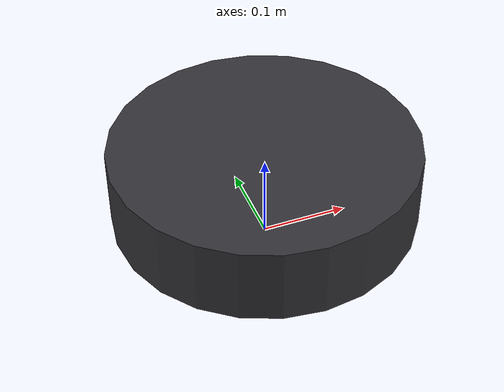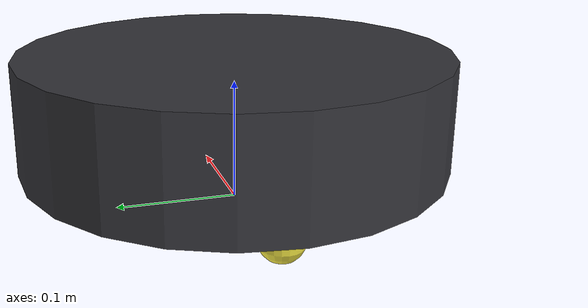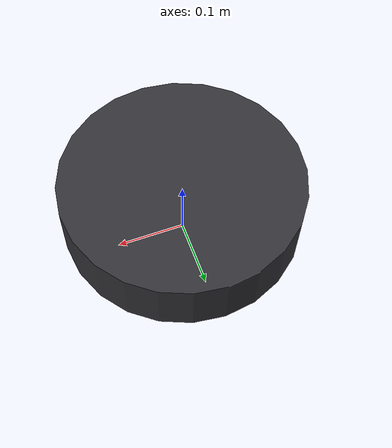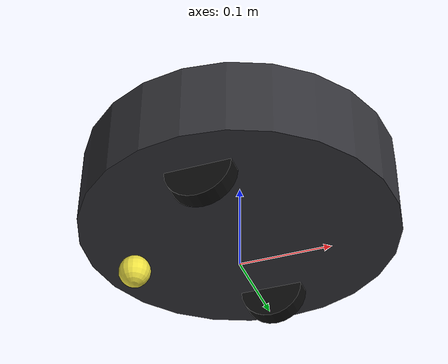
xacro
<?xml version="1.0"?>
<robot name="robot_sim" xmlns:xacro="http://ros.org/wiki/xacro">

  <xacro:arg name="use_camera" default="false"/>

  <xacro:property name="body_radius" value="0.175"/>  <!-- Ø0.35 Roomba -->
  <xacro:property name="body_height" value="0.09"/>
  <xacro:property name="wheel_radius" value="0.036"/>
  <xacro:property name="wheel_width"  value="0.02"/>
  <xacro:property name="wheel_sep"    value="0.235"/> <!-- Roomba track -->
  <xacro:property name="lidar_z"      value="0.16"/>

  <link name="base_link">
    <inertial>
      <mass value="3.0"/>
      <inertia ixx="0.03" ixy="0" ixz="0" iyy="0.03" iyz="0" izz="0.05"/>
    </inertial>
    <collision>
      <origin xyz="0 0 ${wheel_radius + body_height/2}"/>
      <geometry><cylinder radius="${body_radius}" length="${body_height}"/></geometry>
    </collision>
    <visual>
      <origin xyz="0 0 ${wheel_radius + body_height/2}"/>
      <geometry><cylinder radius="${body_radius}" length="${body_height}"/></geometry>
      <material name="grey"><color rgba="0.2 0.2 0.22 1"/></material>
    </visual>
  </link>

  <xacro:macro name="wheel" params="side reflect">
    <link name="${side}_wheel">
      <inertial>
        <mass value="0.2"/>
        <inertia ixx="0.0003" ixy="0" ixz="0" iyy="0.0003" iyz="0" izz="0.0005"/>
      </inertial>
      <collision>
        <origin rpy="1.5708 0 0"/>
        <geometry><cylinder radius="${wheel_radius}" length="${wheel_width}"/></geometry>
      </collision>
      <visual>
        <origin rpy="1.5708 0 0"/>
        <geometry><cylinder radius="${wheel_radius}" length="${wheel_width}"/></geometry>
        <material name="black"><color rgba="0.05 0.05 0.05 1"/></material>
      </visual>
    </link>
    <joint name="${side}_wheel_joint" type="continuous">
      <parent link="base_link"/>
      <child link="${side}_wheel"/>
      <origin xyz="0 ${reflect * wheel_sep / 2} ${wheel_radius}"/>
      <axis xyz="0 1 0"/>
    </joint>
  </xacro:macro>

  <xacro:wheel side="left"  reflect="1"/>
  <xacro:wheel side="right" reflect="-1"/>

  <!-- Passive caster so the two driven wheels define the pose -->
  <link name="caster">
    <inertial><mass value="0.05"/>
      <inertia ixx="1e-5" ixy="0" ixz="0" iyy="1e-5" iyz="0" izz="1e-5"/></inertial>
    <collision><geometry><sphere radius="${wheel_radius/2}"/></geometry>
      <surface><friction><ode><mu>0.0</mu><mu2>0.0</mu2></ode></friction></surface></collision>
    <visual><geometry><sphere radius="${wheel_radius/2}"/></geometry></visual>
  </link>
  <joint name="caster_joint" type="fixed">
    <parent link="base_link"/>
    <child link="caster"/>
    <origin xyz="${-body_radius*0.7} 0 ${wheel_radius/2}"/>
  </joint>

  <link name="lidar_link"/>
  <joint name="lidar_joint" type="fixed">
    <parent link="base_link"/>
    <child link="lidar_link"/>
    <origin xyz="0 0 ${lidar_z}"/>
  </joint>

  <link name="camera_link"/>
  <joint name="camera_joint" type="fixed">
    <parent link="base_link"/>
    <child link="camera_link"/>
    <origin xyz="0.14 0 0.586" rpy="0 0.525 0"/>
  </joint>

  <link name="camera_color_optical_frame"/>
  <joint name="camera_optical_joint" type="fixed">
    <parent link="camera_link"/>
    <child link="camera_color_optical_frame"/>
    <origin xyz="0 0 0" rpy="-1.5707963 0 -1.5707963"/>
  </joint>

  <!-- ── Gazebo: diff-drive + lidar sensor ───────────────────────── -->
  <gazebo>
    <plugin filename="gz-sim-diff-drive-system" name="gz::sim::systems::DiffDrive">
      <left_joint>left_wheel_joint</left_joint>
      <right_joint>right_wheel_joint</right_joint>
      <wheel_separation>${wheel_sep}</wheel_separation>
      <wheel_radius>${wheel_radius}</wheel_radius>
      <topic>cmd_vel_safe</topic>
      <odom_topic>odom</odom_topic>
      <frame_id>odom</frame_id>
      <child_frame_id>base_link</child_frame_id>
      <odom_publish_frequency>30</odom_publish_frequency>
      <tf_topic>/tf</tf_topic>
      <max_linear_acceleration>1.0</max_linear_acceleration>
    </plugin>
    <plugin filename="gz-sim-joint-state-publisher-system"
            name="gz::sim::systems::JointStatePublisher"/>
  </gazebo>

  <gazebo reference="lidar_link">
    <sensor name="lidar" type="gpu_lidar">
      <update_rate>10</update_rate>
      <topic>scan</topic>
      <gz_frame_id>lidar_link</gz_frame_id>
      <lidar>
        <scan><horizontal>
          <samples>360</samples>
          <resolution>1</resolution>
          <min_angle>-3.14159</min_angle>
          <max_angle>3.14159</max_angle>
        </horizontal></scan>
        <range><min>0.15</min><max>12.0</max><resolution>0.01</resolution></range>
      </lidar>
      <always_on>1</always_on>
      <visualize>true</visualize>
    </sensor>
  </gazebo>

  <xacro:if value="$(arg use_camera)">
    <gazebo reference="camera_link">
      <sensor name="camera" type="rgbd_camera">
        <update_rate>15</update_rate>
        <topic>camera</topic>
        <camera>
          <horizontal_fov>1.2043</horizontal_fov>
          <image>
            <width>424</width>
            <height>240</height>
            <format>R8G8B8</format>
          </image>
          <clip><near>0.1</near><far>8.0</far></clip>
          <optical_frame_id>camera_color_optical_frame</optical_frame_id>
        </camera>
        <always_on>1</always_on>
        <visualize>true</visualize>
      </sensor>
    </gazebo>
  </xacro:if>

</robot>
